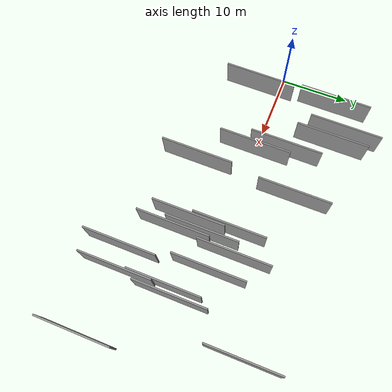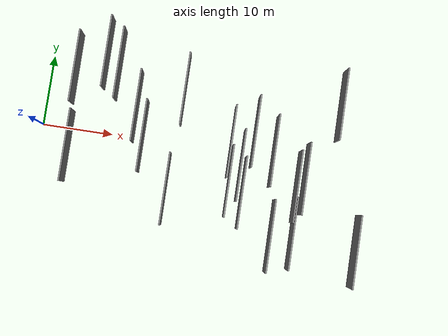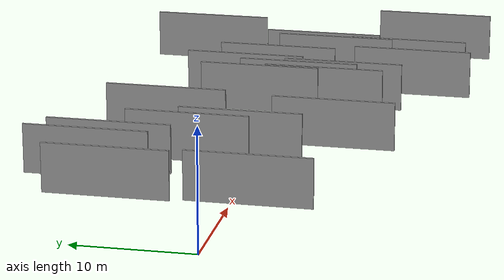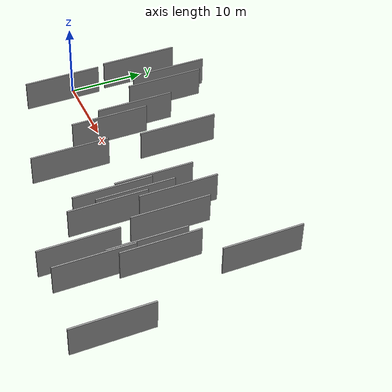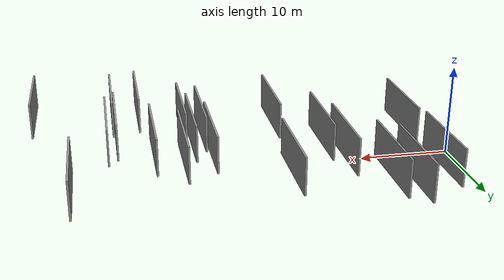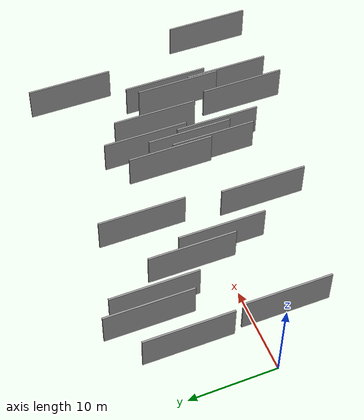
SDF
<sdf version="1.6">
 <world name="default">
  <scene>
   <sky><clouds><speed>12</speed></clouds></sky>
   <ambient>0.4 0.4 0.4 1</ambient>
   <background>0.7 0.7 0.7 1</background>
   <shadows>1</shadows>
  </scene>
  <gravity>0 0 -9.8066</gravity>
  <magnetic_field>6e-06 2.3e-05 -4.2e-05</magnetic_field>
  <physics default="0" name="default_physics" type="ode">
   <ode>
    <solver>
     <type>quick</type>
     <iters>10</iters>
     <sor>1.0</sor>
     <use_dynamic_moi_rescaling>0</use_dynamic_moi_rescaling>
    </solver>
    <constraints>
     <cfm>0</cfm>
     <erp>0.2</erp>
     <contact_max_correcting_vel>100</contact_max_correcting_vel>
     <contact_surface_layer>0.001</contact_surface_layer>
    </constraints>
   </ode>
   <max_step_size>0.004</max_step_size>
   <real_time_factor>1</real_time_factor>
   <real_time_update_rate>250</real_time_update_rate>
  </physics>
  <light name="sun" type="directional">
   <pose>0 0 10 0 0 0</pose>
   <diffuse>0.8 0.8 0.8 1</diffuse>
   <specular>0.2 0.2 0.2 1</specular>
   <attenuation>
    <range>1000</range>
    <constant>0.9</constant>
    <linear>0.01</linear>
    <quadratic>0.001</quadratic>
   </attenuation>
   <direction>-0.5 0.1 -0.9</direction>
  </light>
  <model name="grey_wall_1">
   <static>1</static>
   <pose>36.9016 -10.1512 2.5 0.000000 0.000000 1.570796</pose>
   <link name="link">
    <pose>0 0 2.00 0 0 0</pose>
    <collision name="collision"><geometry><box><size>10.00 0.2 4.00</size></box></geometry></collision>
    <visual name="visual">
     <cast_shadows>0</cast_shadows>
     <geometry><box><size>10.00 0.2 4.00</size></box></geometry>
     <material>
      <script>
       <uri>model://grey_wall/materials/scripts</uri>
       <uri>model://grey_wall/materials/textures</uri>
       <name>vrc/grey_wall</name>
      </script>
     </material>
    </visual>
   </link>
  </model>
  <model name="grey_wall_2">
   <static>1</static>
   <pose>4.1714 8.2044 2.5 0.000000 0.000000 1.570796</pose>
   <link name="link">
    <pose>0 0 2.00 0 0 0</pose>
    <collision name="collision"><geometry><box><size>10.00 0.2 4.00</size></box></geometry></collision>
    <visual name="visual">
     <cast_shadows>0</cast_shadows>
     <geometry><box><size>10.00 0.2 4.00</size></box></geometry>
     <material>
      <script>
       <uri>model://grey_wall/materials/scripts</uri>
       <uri>model://grey_wall/materials/textures</uri>
       <name>vrc/grey_wall</name>
      </script>
     </material>
    </visual>
   </link>
  </model>
  <model name="grey_wall_3">
   <static>1</static>
   <pose>8.1892 10.8636 2.5 0.000000 0.000000 1.570796</pose>
   <link name="link">
    <pose>0 0 2.00 0 0 0</pose>
    <collision name="collision"><geometry><box><size>10.00 0.2 4.00</size></box></geometry></collision>
    <visual name="visual">
     <cast_shadows>0</cast_shadows>
     <geometry><box><size>10.00 0.2 4.00</size></box></geometry>
     <material>
      <script>
       <uri>model://grey_wall/materials/scripts</uri>
       <uri>model://grey_wall/materials/textures</uri>
       <name>vrc/grey_wall</name>
      </script>
     </material>
    </visual>
   </link>
  </model>
  <model name="grey_wall_4">
   <static>1</static>
   <pose>29.3233 -5.6757 2.5 0.000000 0.000000 1.570796</pose>
   <link name="link">
    <pose>0 0 2.00 0 0 0</pose>
    <collision name="collision"><geometry><box><size>10.00 0.2 4.00</size></box></geometry></collision>
    <visual name="visual">
     <cast_shadows>0</cast_shadows>
     <geometry><box><size>10.00 0.2 4.00</size></box></geometry>
     <material>
      <script>
       <uri>model://grey_wall/materials/scripts</uri>
       <uri>model://grey_wall/materials/textures</uri>
       <name>vrc/grey_wall</name>
      </script>
     </material>
    </visual>
   </link>
  </model>
  <model name="grey_wall_5">
   <static>1</static>
   <pose>32.9487 0.6341 2.5 0.000000 0.000000 1.570796</pose>
   <link name="link">
    <pose>0 0 2.00 0 0 0</pose>
    <collision name="collision"><geometry><box><size>10.00 0.2 4.00</size></box></geometry></collision>
    <visual name="visual">
     <cast_shadows>0</cast_shadows>
     <geometry><box><size>10.00 0.2 4.00</size></box></geometry>
     <material>
      <script>
       <uri>model://grey_wall/materials/scripts</uri>
       <uri>model://grey_wall/materials/textures</uri>
       <name>vrc/grey_wall</name>
      </script>
     </material>
    </visual>
   </link>
  </model>
  <model name="grey_wall_6">
   <static>1</static>
   <pose>30.0461 2.8955 2.5 0.000000 0.000000 1.570796</pose>
   <link name="link">
    <pose>0 0 2.00 0 0 0</pose>
    <collision name="collision"><geometry><box><size>10.00 0.2 4.00</size></box></geometry></collision>
    <visual name="visual">
     <cast_shadows>0</cast_shadows>
     <geometry><box><size>10.00 0.2 4.00</size></box></geometry>
     <material>
      <script>
       <uri>model://grey_wall/materials/scripts</uri>
       <uri>model://grey_wall/materials/textures</uri>
       <name>vrc/grey_wall</name>
      </script>
     </material>
    </visual>
   </link>
  </model>
  <model name="grey_wall_7">
   <static>1</static>
   <pose>33.9650 -10.9156 2.5 0.000000 0.000000 1.570796</pose>
   <link name="link">
    <pose>0 0 2.00 0 0 0</pose>
    <collision name="collision"><geometry><box><size>10.00 0.2 4.00</size></box></geometry></collision>
    <visual name="visual">
     <cast_shadows>0</cast_shadows>
     <geometry><box><size>10.00 0.2 4.00</size></box></geometry>
     <material>
      <script>
       <uri>model://grey_wall/materials/scripts</uri>
       <uri>model://grey_wall/materials/textures</uri>
       <name>vrc/grey_wall</name>
      </script>
     </material>
    </visual>
   </link>
  </model>
  <model name="grey_wall_8">
   <static>1</static>
   <pose>37.6508 -2.5333 2.5 0.000000 0.000000 1.570796</pose>
   <link name="link">
    <pose>0 0 2.00 0 0 0</pose>
    <collision name="collision"><geometry><box><size>10.00 0.2 4.00</size></box></geometry></collision>
    <visual name="visual">
     <cast_shadows>0</cast_shadows>
     <geometry><box><size>10.00 0.2 4.00</size></box></geometry>
     <material>
      <script>
       <uri>model://grey_wall/materials/scripts</uri>
       <uri>model://grey_wall/materials/textures</uri>
       <name>vrc/grey_wall</name>
      </script>
     </material>
    </visual>
   </link>
  </model>
  <model name="grey_wall_9">
   <static>1</static>
   <pose>10.0956 9.5350 2.5 0.000000 0.000000 1.570796</pose>
   <link name="link">
    <pose>0 0 2.00 0 0 0</pose>
    <collision name="collision"><geometry><box><size>10.00 0.2 4.00</size></box></geometry></collision>
    <visual name="visual">
     <cast_shadows>0</cast_shadows>
     <geometry><box><size>10.00 0.2 4.00</size></box></geometry>
     <material>
      <script>
       <uri>model://grey_wall/materials/scripts</uri>
       <uri>model://grey_wall/materials/textures</uri>
       <name>vrc/grey_wall</name>
      </script>
     </material>
    </visual>
   </link>
  </model>
  <model name="grey_wall_10">
   <static>1</static>
   <pose>41.3706 8.2817 2.5 0.000000 0.000000 1.570796</pose>
   <link name="link">
    <pose>0 0 2.00 0 0 0</pose>
    <collision name="collision"><geometry><box><size>10.00 0.2 4.00</size></box></geometry></collision>
    <visual name="visual">
     <cast_shadows>0</cast_shadows>
     <geometry><box><size>10.00 0.2 4.00</size></box></geometry>
     <material>
      <script>
       <uri>model://grey_wall/materials/scripts</uri>
       <uri>model://grey_wall/materials/textures</uri>
       <name>vrc/grey_wall</name>
      </script>
     </material>
    </visual>
   </link>
  </model>
  <model name="grey_wall_11">
   <static>1</static>
   <pose>28.6716 -1.9742 2.5 0.000000 0.000000 1.570796</pose>
   <link name="link">
    <pose>0 0 2.00 0 0 0</pose>
    <collision name="collision"><geometry><box><size>10.00 0.2 4.00</size></box></geometry></collision>
    <visual name="visual">
     <cast_shadows>0</cast_shadows>
     <geometry><box><size>10.00 0.2 4.00</size></box></geometry>
     <material>
      <script>
       <uri>model://grey_wall/materials/scripts</uri>
       <uri>model://grey_wall/materials/textures</uri>
       <name>vrc/grey_wall</name>
      </script>
     </material>
    </visual>
   </link>
  </model>
  <model name="grey_wall_12">
   <static>1</static>
   <pose>26.9527 1.0534 2.5 0.000000 0.000000 1.570796</pose>
   <link name="link">
    <pose>0 0 2.00 0 0 0</pose>
    <collision name="collision"><geometry><box><size>10.00 0.2 4.00</size></box></geometry></collision>
    <visual name="visual">
     <cast_shadows>0</cast_shadows>
     <geometry><box><size>10.00 0.2 4.00</size></box></geometry>
     <material>
      <script>
       <uri>model://grey_wall/materials/scripts</uri>
       <uri>model://grey_wall/materials/textures</uri>
       <name>vrc/grey_wall</name>
      </script>
     </material>
    </visual>
   </link>
  </model>
  <model name="grey_wall_13">
   <static>1</static>
   <pose>13.3282 4.0513 2.5 0.000000 0.000000 1.570796</pose>
   <link name="link">
    <pose>0 0 2.00 0 0 0</pose>
    <collision name="collision"><geometry><box><size>10.00 0.2 4.00</size></box></geometry></collision>
    <visual name="visual">
     <cast_shadows>0</cast_shadows>
     <geometry><box><size>10.00 0.2 4.00</size></box></geometry>
     <material>
      <script>
       <uri>model://grey_wall/materials/scripts</uri>
       <uri>model://grey_wall/materials/textures</uri>
       <name>vrc/grey_wall</name>
      </script>
     </material>
    </visual>
   </link>
  </model>
  <model name="grey_wall_14">
   <static>1</static>
   <pose>4.5772 -2.7460 2.5 0.000000 0.000000 1.570796</pose>
   <link name="link">
    <pose>0 0 2.00 0 0 0</pose>
    <collision name="collision"><geometry><box><size>10.00 0.2 4.00</size></box></geometry></collision>
    <visual name="visual">
     <cast_shadows>0</cast_shadows>
     <geometry><box><size>10.00 0.2 4.00</size></box></geometry>
     <material>
      <script>
       <uri>model://grey_wall/materials/scripts</uri>
       <uri>model://grey_wall/materials/textures</uri>
       <name>vrc/grey_wall</name>
      </script>
     </material>
    </visual>
   </link>
  </model>
  <model name="grey_wall_15">
   <static>1</static>
   <pose>36.6716 -3.7565 2.5 0.000000 0.000000 1.570796</pose>
   <link name="link">
    <pose>0 0 2.00 0 0 0</pose>
    <collision name="collision"><geometry><box><size>10.00 0.2 4.00</size></box></geometry></collision>
    <visual name="visual">
     <cast_shadows>0</cast_shadows>
     <geometry><box><size>10.00 0.2 4.00</size></box></geometry>
     <material>
      <script>
       <uri>model://grey_wall/materials/scripts</uri>
       <uri>model://grey_wall/materials/textures</uri>
       <name>vrc/grey_wall</name>
      </script>
     </material>
    </visual>
   </link>
  </model>
  <model name="grey_wall_16">
   <static>1</static>
   <pose>27.3388 -4.3617 2.5 0.000000 0.000000 1.570796</pose>
   <link name="link">
    <pose>0 0 2.00 0 0 0</pose>
    <collision name="collision"><geometry><box><size>10.00 0.2 4.00</size></box></geometry></collision>
    <visual name="visual">
     <cast_shadows>0</cast_shadows>
     <geometry><box><size>10.00 0.2 4.00</size></box></geometry>
     <material>
      <script>
       <uri>model://grey_wall/materials/scripts</uri>
       <uri>model://grey_wall/materials/textures</uri>
       <name>vrc/grey_wall</name>
      </script>
     </material>
    </visual>
   </link>
  </model>
  <model name="grey_wall_17">
   <static>1</static>
   <pose>45.7025 -11.3442 2.5 0.000000 0.000000 1.570796</pose>
   <link name="link">
    <pose>0 0 2.00 0 0 0</pose>
    <collision name="collision"><geometry><box><size>10.00 0.2 4.00</size></box></geometry></collision>
    <visual name="visual">
     <cast_shadows>0</cast_shadows>
     <geometry><box><size>10.00 0.2 4.00</size></box></geometry>
     <material>
      <script>
       <uri>model://grey_wall/materials/scripts</uri>
       <uri>model://grey_wall/materials/textures</uri>
       <name>vrc/grey_wall</name>
      </script>
     </material>
    </visual>
   </link>
  </model>
  <model name="grey_wall_18">
   <static>1</static>
   <pose>14.7192 0.0561 2.5 0.000000 0.000000 1.570796</pose>
   <link name="link">
    <pose>0 0 2.00 0 0 0</pose>
    <collision name="collision"><geometry><box><size>10.00 0.2 4.00</size></box></geometry></collision>
    <visual name="visual">
     <cast_shadows>0</cast_shadows>
     <geometry><box><size>10.00 0.2 4.00</size></box></geometry>
     <material>
      <script>
       <uri>model://grey_wall/materials/scripts</uri>
       <uri>model://grey_wall/materials/textures</uri>
       <name>vrc/grey_wall</name>
      </script>
     </material>
    </visual>
   </link>
  </model>
  <model name="grey_wall_19">
   <static>1</static>
   <pose>18.8960 -6.6735 2.5 0.000000 0.000000 1.570796</pose>
   <link name="link">
    <pose>0 0 2.00 0 0 0</pose>
    <collision name="collision"><geometry><box><size>10.00 0.2 4.00</size></box></geometry></collision>
    <visual name="visual">
     <cast_shadows>0</cast_shadows>
     <geometry><box><size>10.00 0.2 4.00</size></box></geometry>
     <material>
      <script>
       <uri>model://grey_wall/materials/scripts</uri>
       <uri>model://grey_wall/materials/textures</uri>
       <name>vrc/grey_wall</name>
      </script>
     </material>
    </visual>
   </link>
  </model>
  <model name="grey_wall_20">
   <static>1</static>
   <pose>19.6145 7.3024 2.5 0.000000 0.000000 1.570796</pose>
   <link name="link">
    <pose>0 0 2.00 0 0 0</pose>
    <collision name="collision"><geometry><box><size>10.00 0.2 4.00</size></box></geometry></collision>
    <visual name="visual">
     <cast_shadows>0</cast_shadows>
     <geometry><box><size>10.00 0.2 4.00</size></box></geometry>
     <material>
      <script>
       <uri>model://grey_wall/materials/scripts</uri>
       <uri>model://grey_wall/materials/textures</uri>
       <name>vrc/grey_wall</name>
      </script>
     </material>
    </visual>
   </link>
  </model>
 </world>
</sdf>
